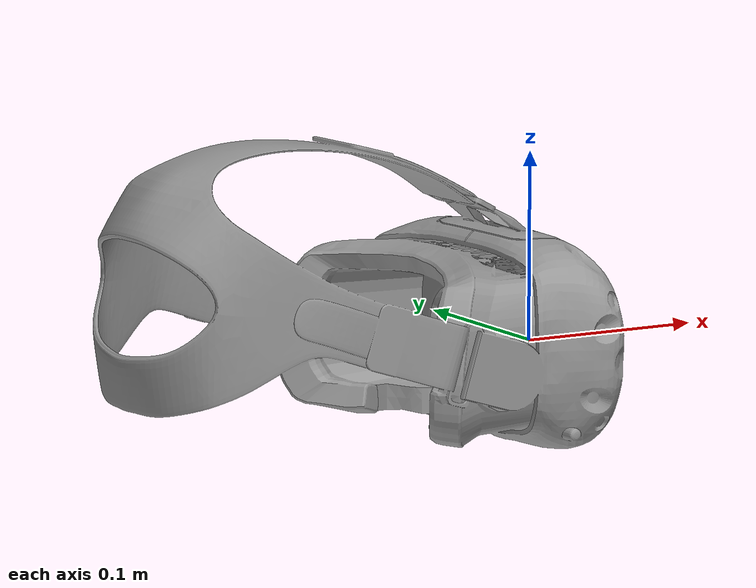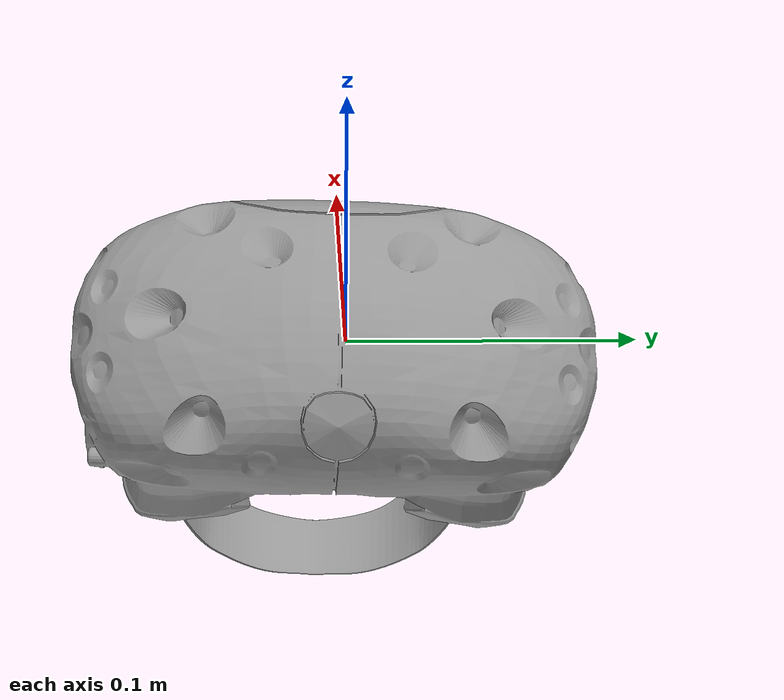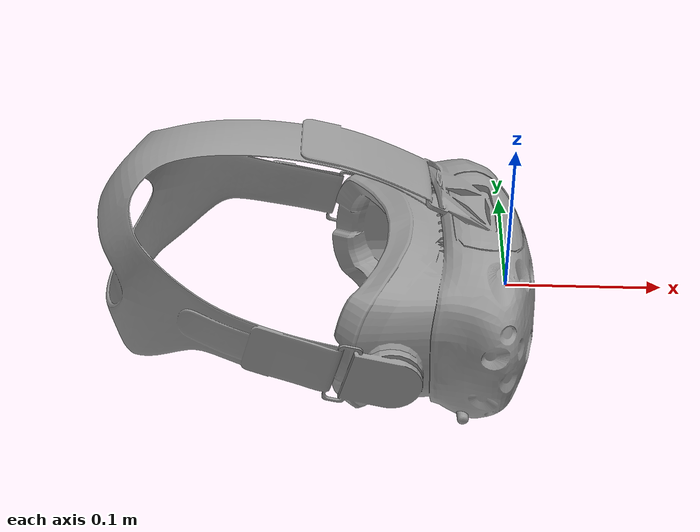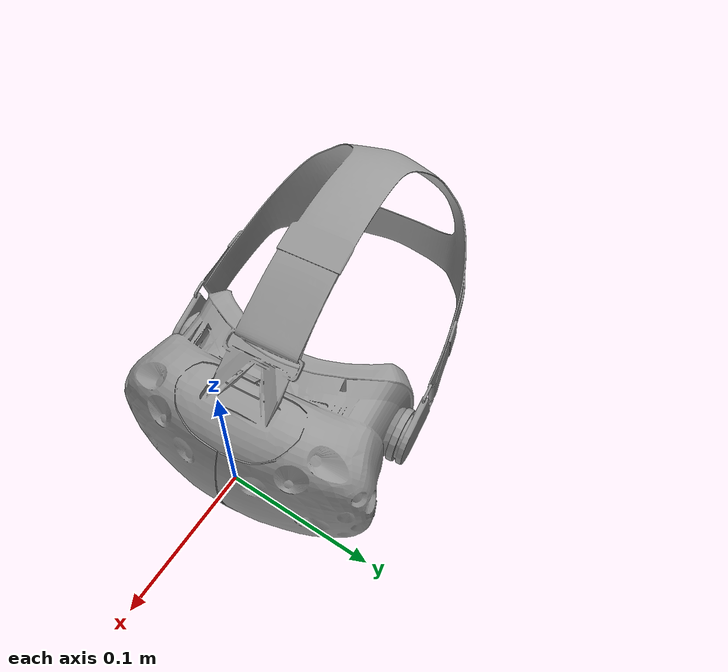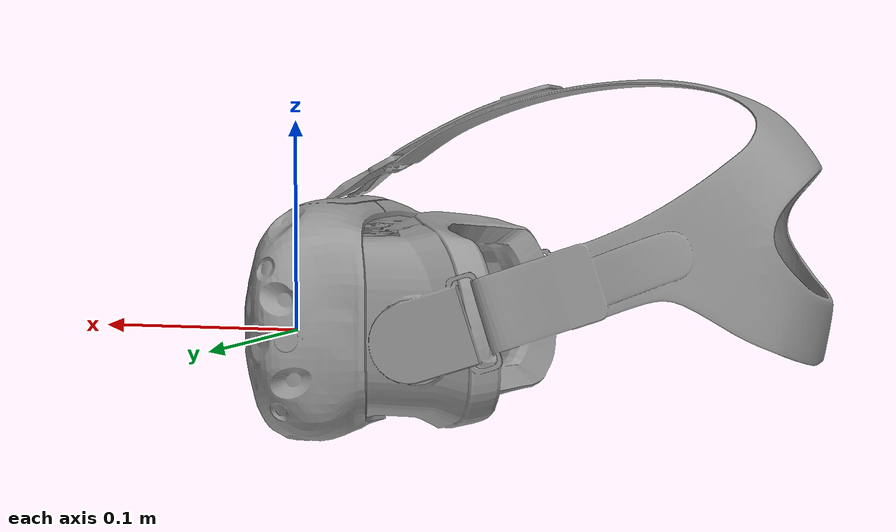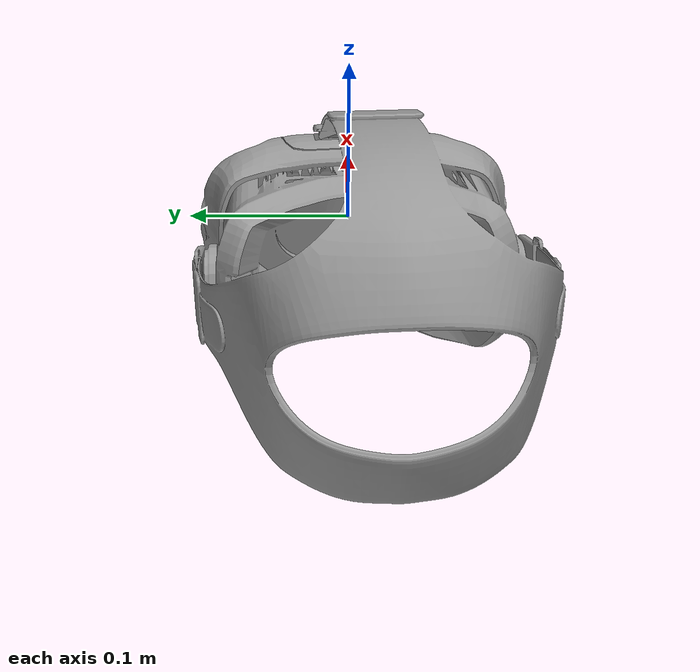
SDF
<?xml version='1.0'?>
<sdf version='1.6'>
  <model name='vr_HMD'>
    <pose frame=''>0 0 0 0 0 0</pose>
    <static>1</static>
    <allow_auto_disable>1</allow_auto_disable>

    <link name='link1'>
      <pose frame=''>0 0.03 0 0 -0 0.08</pose>
      <visual name='visual'>
        <pose frame=''>-0.06 -0.03 0 0 -0 0</pose>
        <geometry>
          <mesh>
            <uri>model://vr_HMD/meshes/HMD.dae</uri>
            <scale>1 1 1</scale>
          </mesh>
        </geometry>

        <material>
          <lighting>1</lighting>
          <script>
            <uri>file://media/materials/scripts/gazebo.material</uri>
            <name>Gazebo/Grey</name>
          </script>
          <shader type='vertex'>
            <normal_map>__default__</normal_map>
          </shader>
          <ambient>0.3 0.3 0.3 1</ambient>
          <diffuse>0.7 0.7 0.7 1</diffuse>
          <specular>0.01 0.01 0.01 1</specular>
          <emissive>0 0 0 1</emissive>
        </material>
      </visual>

      <collision name='collision'>
        <max_contacts>10</max_contacts>
        <pose frame=''>0 0 0 0 -0 0</pose>
        <geometry>
          <box>
            <size>0.01 0.01 0.01</size>
          </box>
        </geometry>
      </collision>

      <sensor name='camera_ros_l' type='camera'>
        <pose>0.0 0 0 0 0 0</pose>
        <always_on>1</always_on>
        <update_rate>144</update_rate>
        <visualize>0</visualize>

        <plugin name='camera_controller' filename='libgazebo_ros_camera.so'>
          <alwaysOn>1</alwaysOn>
          <updateRate>0.0</updateRate>
          <cameraName>to_VR_bring</cameraName>
          <imageTopicName>imagel</imageTopicName> <!--xiugaiguo-->
          <cameraInfoTopicName>cameral_infol</cameraInfoTopicName>
          <frameName>camera_rgb_link_l</frameName>
          <hackBaseline>0.07</hackBaseline>
          <distortionK1>0.0</distortionK1>
          <distortionK2>0.0</distortionK2>
          <distortionK3>0.0</distortionK3>
          <distortionT1>0.0</distortionT1>
          <distortionT2>0.0</distortionT2>
        </plugin>

        <camera name='cam'>
          <horizontal_fov>2.2</horizontal_fov>
          <image>
            <width>2048</width>
            <height>2048</height>
            <format>R8G8B8</format>
          </image>
          <clip>
            <near>0.02</near>
            <far>20</far>
          </clip>
        </camera>
      </sensor>
    </link>

    <joint name="joint" type="fixed">
      <parent>link1</parent>
      <child>link2</child>
      <pose>0 0 0 0 0 0</pose>
      <axis>
        <xyz>0 0 0</xyz>
      </axis>
    </joint>

    <link name='link2'>
      <pose frame=''>0 -0.03 0 0 -0 -0.08</pose>
      <visual name='visual'>
        <geometry>
          <box>
            <size>0.01 0.01 0.01</size>
          </box>
        </geometry>
      </visual>

      <collision name='collision'>
        <max_contacts>10</max_contacts>
        <pose frame=''>0 0 0 0 -0 0</pose>
        <geometry>
          <box>
            <size>0.01 0.01 0.01</size>
          </box>
        </geometry>
      </collision>

      <sensor name='camera_ros_r' type='camera'>
        <pose >0 0 0 0 0 0</pose>
        <always_on>1</always_on>
        <update_rate>144</update_rate>
        <visualize>0</visualize>

        <plugin name='camera_controller' filename='libgazebo_ros_camera.so'>
          <alwaysOn>1</alwaysOn>
          <updateRate>0.0</updateRate>
          <cameraName>to_VR_bring</cameraName>
          <imageTopicName>imager</imageTopicName>
          <cameraInfoTopicName>camerar_infor</cameraInfoTopicName>
          <frameName>camera_rgb_link_r</frameName>
          <hackBaseline>0.07</hackBaseline>
          <distortionK1>0.0</distortionK1>
          <distortionK2>0.0</distortionK2>
          <distortionK3>0.0</distortionK3>
          <distortionT1>0.0</distortionT1>
          <distortionT2>0.0</distortionT2>
        </plugin>

        <camera name='cam2'>
          <horizontal_fov>2.2</horizontal_fov>
          <image>
            <width>2048</width>
            <height>2048</height>
            <format>R8G8B8</format>
          </image>
          <clip>
            <near>0.02</near>
            <far>20</far>
          </clip>
        </camera>
      </sensor>
    </link>
  </model>
</sdf>
